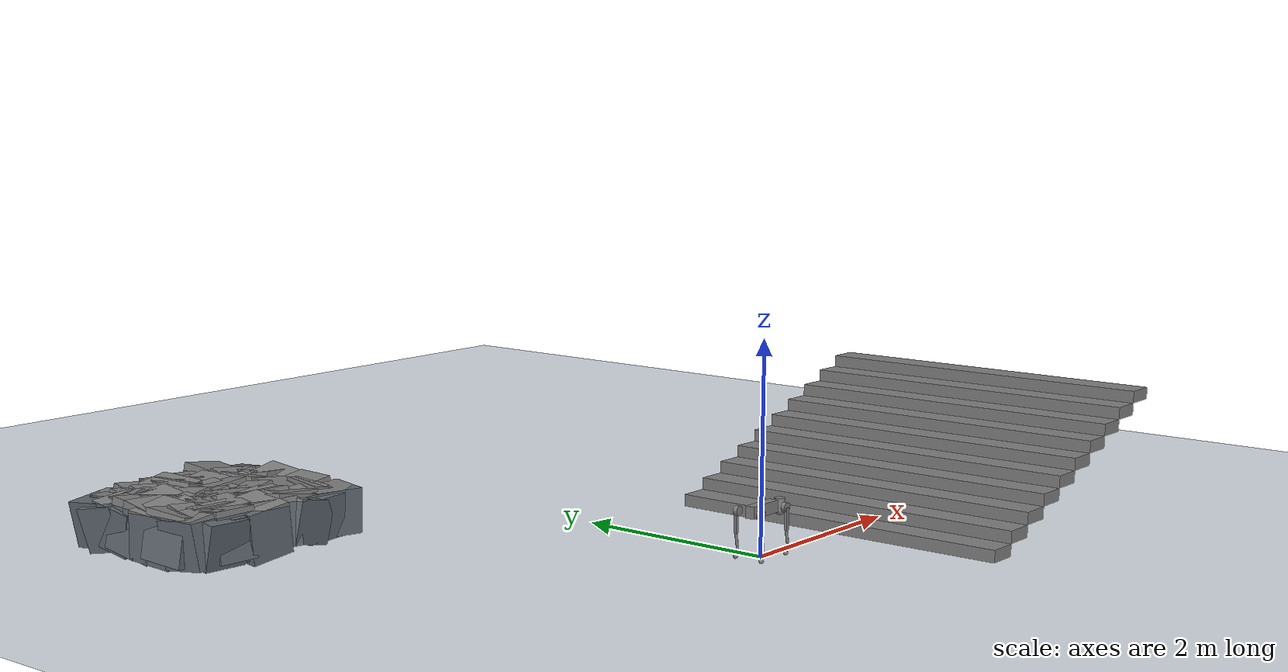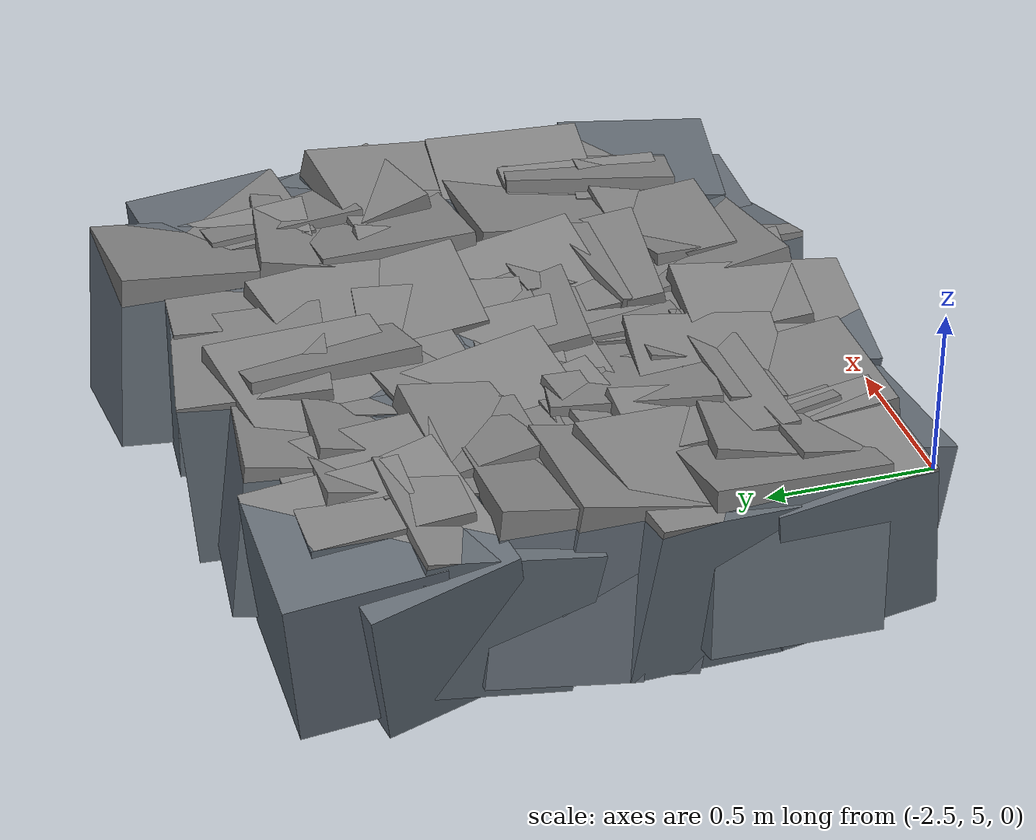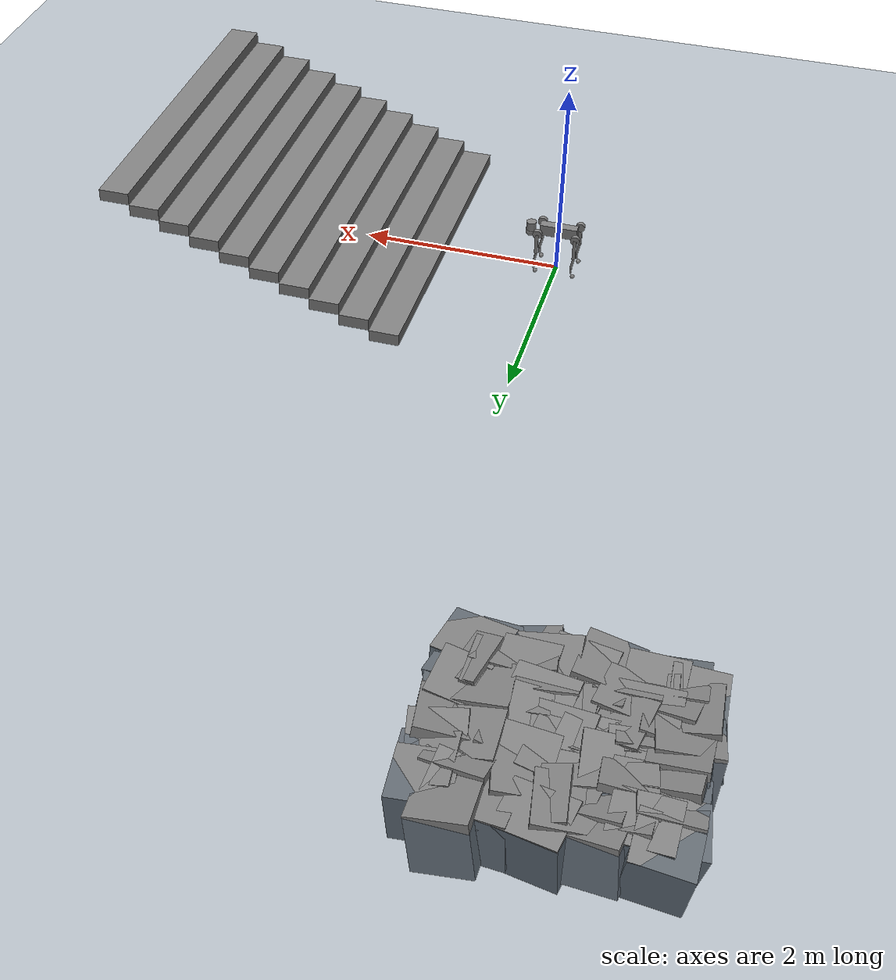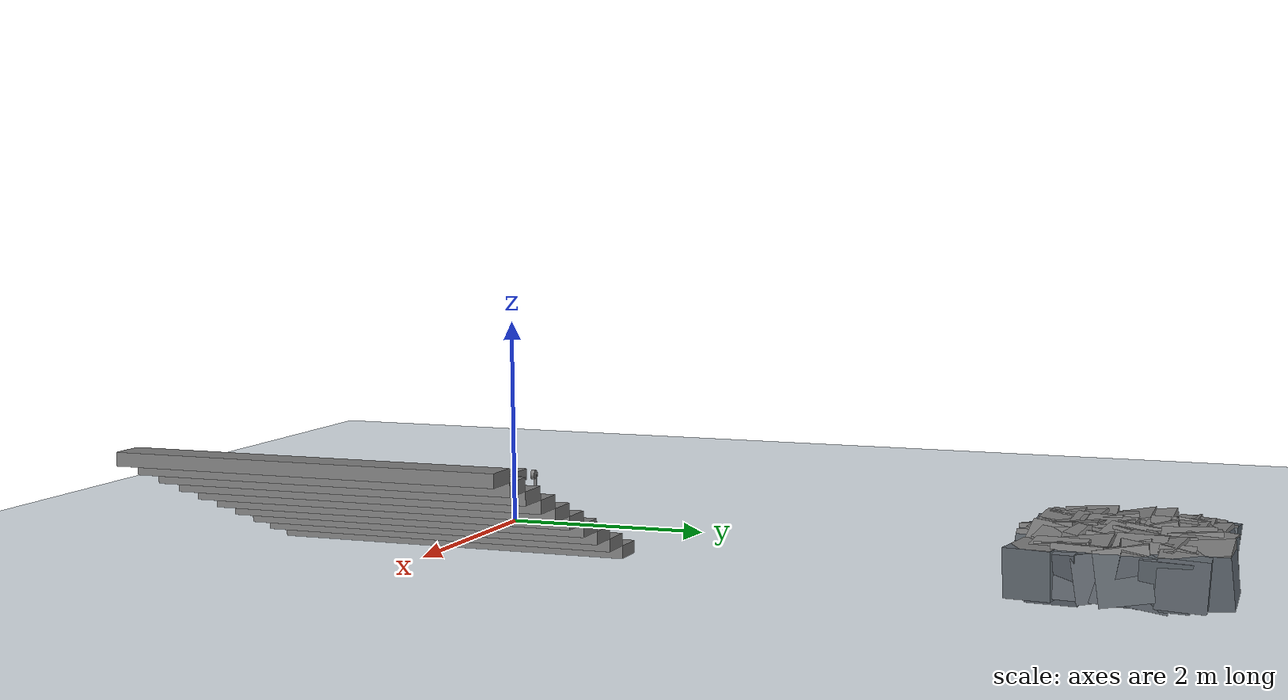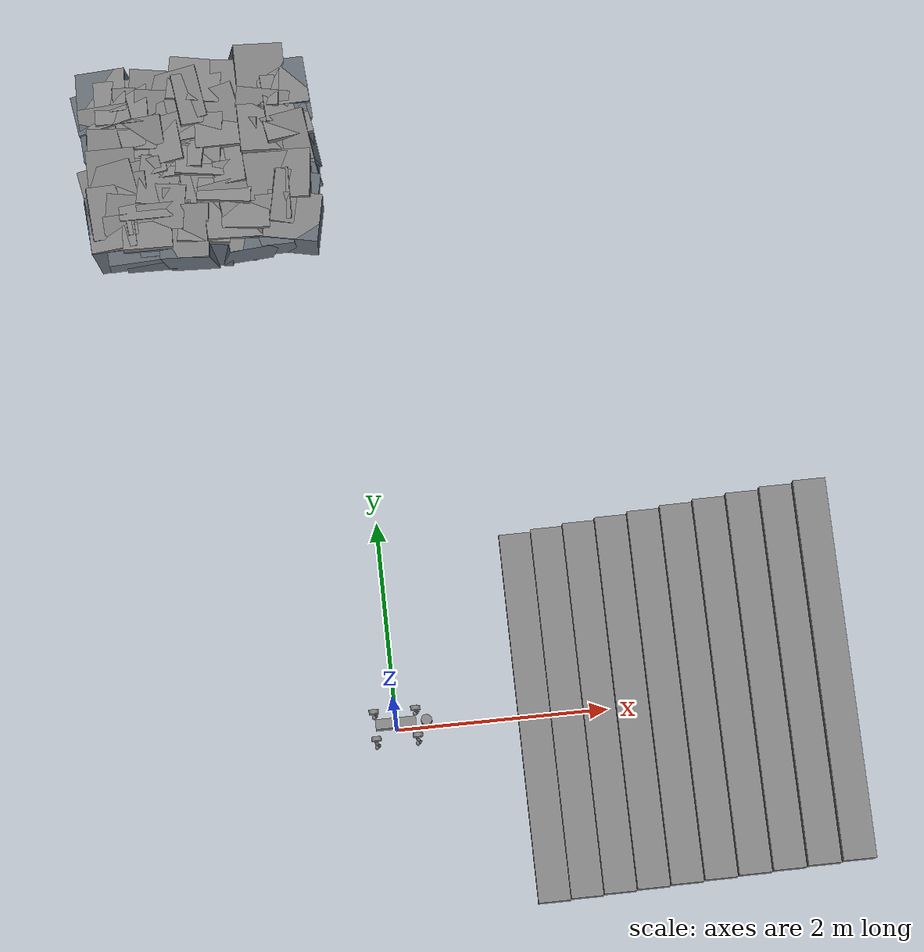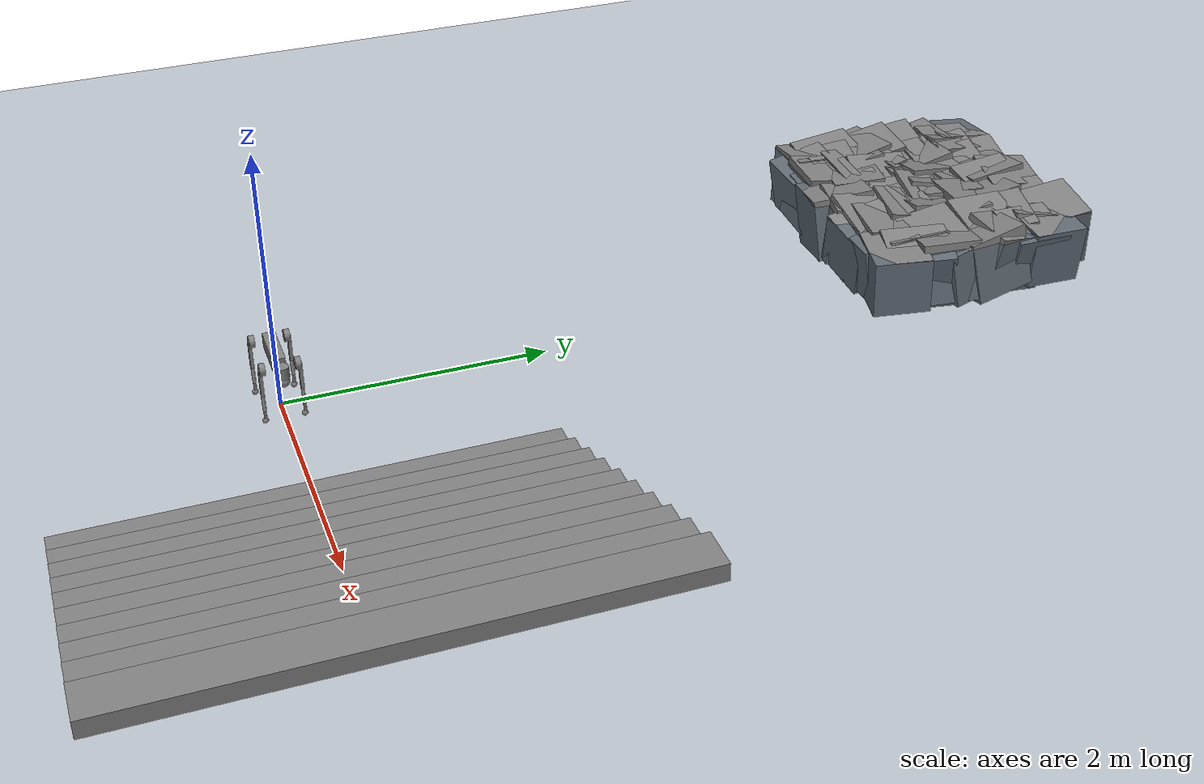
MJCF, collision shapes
<mujoco model="go2_reordered">
  <include file="go2_reordered.xml" />
  <statistic center="1.0 0.7 1.0" extent="0.8" />

  <visual>
    <headlight diffuse="0.6 0.6 0.6" ambient="0.1 0.1 0.1" specular="0.9 0.9 0.9" />
    <rgba haze="0.15 0.25 0.35 1" />
    <global azimuth="-140" elevation="-20" />
  </visual>

  <asset>
    <texture type="skybox" builtin="flat" rgb1="0 0 0" rgb2="0 0 0" width="512" height="3072" />
    <texture type="2d" name="groundplane" builtin="checker" mark="edge" rgb1="0.2 0.3 0.4" rgb2="0.1 0.2 0.3" markrgb="0.8 0.8 0.8" width="300" height="300" />
    <material name="groundplane" texture="groundplane" texuniform="true" texrepeat="5 5" reflectance="0.2" />
  </asset>

  <worldbody>
    <light pos="1 0 3.5" dir="0 0 -1" directional="true" />
    <geom name="floor" size="0 0 0.05" type="plane" material="groundplane" />
  <geom pos="1.3 0.0 0.06" type="box" size="0.15 1.75 0.06" quat="1.0 0.0 0.0 0.0" /><geom pos="1.6 0.0 0.18" type="box" size="0.15 1.75 0.06" quat="1.0 0.0 0.0 0.0" /><geom pos="1.9 0.0 0.3" type="box" size="0.15 1.75 0.06" quat="1.0 0.0 0.0 0.0" /><geom pos="2.2 0.0 0.42" type="box" size="0.15 1.75 0.06" quat="1.0 0.0 0.0 0.0" /><geom pos="2.5 0.0 0.54" type="box" size="0.15 1.75 0.06" quat="1.0 0.0 0.0 0.0" /><geom pos="2.8 0.0 0.66" type="box" size="0.15 1.75 0.06" quat="1.0 0.0 0.0 0.0" /><geom pos="3.1 0.0 0.78" type="box" size="0.15 1.75 0.06" quat="1.0 0.0 0.0 0.0" /><geom pos="3.4 0.0 0.9" type="box" size="0.15 1.75 0.06" quat="1.0 0.0 0.0 0.0" /><geom pos="3.6999999999999997 0.0 1.02" type="box" size="0.15 1.75 0.06" quat="1.0 0.0 0.0 0.0" /><geom pos="3.9999999999999996 0.0 1.1400000000000001" type="box" size="0.15 1.75 0.06" quat="1.0 0.0 0.0 0.0" /><geom pos="-2.275692204596663 5.222427953840395 -0.25" type="box" size="0.22774797884614315 0.2452690002914122 0.2575384432589398" quat="0.9967722461443645 -0.053561457721925894 -0.0494748420774672 0.03359314758146617" /><geom pos="-2.275692204596663 5.419786746753514 -0.25" type="box" size="0.26711890643957836 0.27211757995399566 0.261319166325342" quat="0.9960345402406957 0.03133918932899227 0.07385034711354348 0.03846005838420403" /><geom pos="-2.275692204596663 5.669522915053571 -0.25" type="box" size="0.2664299008210954 0.253722256145906 0.267383662472566" quat="0.9932993886017522 0.06319279356389824 -0.04226749788868013 0.08704282892465338" /><geom pos="-2.275692204596663 5.866189163667039 -0.25" type="box" size="0.2395959581938352 0.2282401480179473 0.27472059301621754" quat="0.9952369957780518 0.09294287953888396 0.028652170206139357 0.00663298727401148" /><geom pos="-2.275692204596663 6.058492269804178 -0.25" type="box" size="0.24101246570413 0.233171754738473 0.2742290039641888" quat="0.995132724692507 0.06671093767737497 0.07100329579469325 -0.014800102248418783" /><geom pos="-2.275692204596663 6.287063344282744 -0.25" type="box" size="0.2525436915632833 0.26513067478487484 0.23772123952810278" quat="0.9949807943602791 0.09190255279499432 -0.03207089948516648 0.02320769377088911" /><geom pos="-2.275692204596663 6.466908963921511 -0.25" type="box" size="0.2739669096741818 0.22730288714654123 0.24393043024576413" quat="0.9889317263169838 -0.08060259690699748 -0.09049624005633025 0.08560194268371099" /><geom pos="-2.275692204596663 6.644462868753335 -0.25" type="box" size="0.2487963665616827 0.2330162261340336 0.24673548495821174" quat="0.9964279969034541 -0.05295670077273315 -0.06576638037393819 0.0012720230925557015" /><geom pos="-2.110826744856104 5.161289700331353 -0.25" type="box" size="0.2719973499580648 0.2470049919236343 0.24491623044252792" quat="0.9952592670103468 0.0896882893813727 0.024574384615469194 0.028479848992603994" /><geom pos="-2.110826744856104 5.353740289452763 -0.25" type="box" size="0.2594712625096126 0.24032072104278732 0.25970782585691965" quat="0.9931187069352377 0.08500367234458783 0.03156177788601598 -0.07411790471869198" /><geom pos="-2.110826744856104 5.555104674217254 -0.25" type="box" size="0.23848936728265824 0.26364328833424305 0.24095115481534796" quat="0.9919460083985672 0.08215556037669246 -0.0947328214459761 0.017868208142569827" /><geom pos="-2.110826744856104 5.729609173532725 -0.25" type="box" size="0.26606190424051845 0.23046689924441524 0.25436842380579494" quat="0.9980738036152217 0.040086318682170066 0.013135123612110925 0.04548887907225106" /><geom pos="-2.110826744856104 5.929636131976497 -0.25" type="box" size="0.22802002846040573 0.2432605562376801 0.22534167608433772" quat="0.9949542136663844 0.06631841376653803 0.06902646498645236 -0.03005541273166915" /><geom pos="-2.110826744856104 6.126881459782755 -0.25" type="box" size="0.22732525815355228 0.23178444825938577 0.24426290811180287" quat="0.9957620535707428 -0.08259202772184 0.03307357015110053 -0.02329438951404992" /><geom pos="-2.110826744856104 6.3520042688063345 -0.25" type="box" size="0.2348389875297819 0.26402898399651603 0.22850872170044695" quat="0.9998864727161741 0.01213431235369811 0.00828972248063315 0.0033287601452603828" /><geom pos="-2.110826744856104 6.515081582637116 -0.25" type="box" size="0.2624843703764773 0.23479359847364997 0.2730090404470215" quat="0.9989923557610562 -0.043567715193581484 -0.010552980169042674 -0.0021821854499977206" /><geom pos="-1.9600850149913995 5.205396429339522 -0.25" type="box" size="0.24336405194015817 0.26088341619770394 0.2677971802643262" quat="0.997925516098054 -0.06368772263217519 0.008102524864010644 -0.004784077464626218" /><geom pos="-1.9600850149913995 5.372216727568588 -0.25" type="box" size="0.2497686231223855 0.2495392011251768 0.2264393406310668" quat="0.9921236820392084 -0.06309956103880307 0.09675025993002627 0.04846062460540716" /><geom pos="-1.9600850149913995 5.546825150562981 -0.25" type="box" size="0.2627235713686762 0.26918964793758443 0.2724889062352489" quat="0.9996564444169861 -0.023229112720484408 0.011493553588605104 0.00391148101288203" /><geom pos="-1.9600850149913995 5.710376659772997 -0.25" type="box" size="0.2285517878770417 0.227360326562507 0.2561910713978269" quat="0.9935601810957934 0.07223891223581518 -0.0325227009884857 0.08100604928209908" /><geom pos="-1.9600850149913995 5.926747791291201 -0.25" type="box" size="0.24303991913480202 0.23079742790448227 0.25051840382267015" quat="0.9941596270677394 -0.06820455324612779 -0.034050004926105285 0.07638960655456821" /><geom pos="-1.9600850149913995 6.145182499859356 -0.25" type="box" size="0.2606752875665946 0.24871930881897816 0.2538775006945229" quat="0.9939096065335186 0.09469590324636877 -0.04677687781949444 0.03143729711983628" /><geom pos="-1.9600850149913995 6.302369765965459 -0.25" type="box" size="0.2622771728690432 0.25688132015169196 0.25083336316528915" quat="0.9917038231938551 -0.03372859739346026 0.07354695873159765 0.099883700581696" /><geom pos="-1.9600850149913995 6.489163665074329 -0.25" type="box" size="0.26621549831638974 0.22908540201748667 0.22951851294137618" quat="0.9941687859775755 0.08546568227339625 0.06548177189538262 -0.006014955598978334" /><geom pos="-1.7830217064158196 5.221731507301991 -0.25" type="box" size="0.2668816883842233 0.26276452927618316 0.24794125803235545" quat="0.9966266985928045 0.08105139225956103 0.012437435216002504 0.003347487123454581" /><geom pos="-1.7830217064158196 5.423128454729424 -0.25" type="box" size="0.23744282980700587 0.22534402919584673 0.27472871339466093" quat="0.9959255596910115 0.02242758737174232 -0.035347370370289295 -0.07987393997252042" /><geom pos="-1.7830217064158196 5.6654412339795375 -0.25" type="box" size="0.2529557420905849 0.25186465597361246 0.27074064144641435" quat="0.9938964773989766 -0.000815521830167803 0.061720342536455794 -0.09143153971815549" /><geom pos="-1.7830217064158196 5.899963895181697 -0.25" type="box" size="0.22554775695085366 0.24154705114719338 0.23223016372592162" quat="0.9945074433238158 -0.09836324845186001 -0.031445019655556544 0.017053658445811876" /><geom pos="-1.7830217064158196 6.076802139299304 -0.25" type="box" size="0.2575326193512669 0.26602956377630904 0.25083720520932373" quat="0.9935318878554464 -0.06650413480365834 -0.07150313390892626 0.057955929028974305" /><geom pos="-1.7830217064158196 6.259345588345288 -0.25" type="box" size="0.2501515247829087 0.2650444857510082 0.2336092151469619" quat="0.9976802894608328 -0.04835564595042546 0.046821596402030555 -0.010173968568424663" /><geom pos="-1.7830217064158196 6.409980407366078 -0.25" type="box" size="0.232696310071144 0.26322294286345804 0.236182040809878" quat="0.9940951164915962 0.08949842727036782 0.04680405200270091 -0.03967759569100642" /><geom pos="-1.7830217064158196 6.617011783765668 -0.25" type="box" size="0.2715442838349046 0.25294490722253793 0.24097465561718" quat="0.9947438440897011 0.06441086761983275 0.04678302637229749 -0.06439932625077739" /><geom pos="-1.5550861124263187 5.152985839270033 -0.25" type="box" size="0.24643428679234872 0.2699989020543683 0.27394453791395956" quat="0.9958536040680017 0.03939361559433154 -0.07172986383044416 -0.03973120876645758" /><geom pos="-1.5550861124263187 5.381622312135561 -0.25" type="box" size="0.2608379112580247 0.24054901237364826 0.2276128210983299" quat="0.993268707518062 0.0942447309273593 0.06093732530058708 -0.028667886965016584" /><geom pos="-1.5550861124263187 5.622390629189484 -0.25" type="box" size="0.25855376163398675 0.27460617326968756 0.22957589414687174" quat="0.9987558670298595 -0.041796531406106736 0.024175969698475398 0.012461561900112886" /><geom pos="-1.5550861124263187 5.823511776171352 -0.25" type="box" size="0.26819469928697326 0.24515089258644274 0.2320727986084611" quat="0.9979361615560974 0.03899613572326096 0.01581049137585232 -0.048505125706357434" /><geom pos="-1.5550861124263187 6.001128351590867 -0.25" type="box" size="0.2644080414990209 0.24490568747449587 0.2332001379758888" quat="0.988764636651012 -0.09849787446057319 -0.08101685331191934 -0.07796750293921156" /><geom pos="-1.5550861124263187 6.166890610083857 -0.25" type="box" size="0.25069330501448706 0.23302031290842454 0.24760357761136562" quat="0.9948690624198905 0.030142708487503802 0.009584099542052369 0.0960994838736059" /><geom pos="-1.5550861124263187 6.330021410031244 -0.25" type="box" size="0.24381064550449705 0.26306730223357533 0.23626539393011073" quat="0.9959383051433218 0.02427096958651699 0.023118547935541623 -0.0835664114637573" /><geom pos="-1.5550861124263187 6.556487000258745 -0.25" type="box" size="0.27408557113688126 0.268892849702812 0.26699781131477507" quat="0.9950247277869869 0.03190861379761286 -0.055329544403204166 0.07646092449140911" /><geom pos="-1.3803799158403474 5.18822875454155 -0.25" type="box" size="0.26087350271251186 0.23596805224722464 0.25730745658187604" quat="0.9939938924129201 -0.08083706672295275 -0.00030251331601820197 -0.07376597437256846" /><geom pos="-1.3803799158403474 5.435519285422012 -0.25" type="box" size="0.25703766676179574 0.24954263262351428 0.2645803753249851" quat="0.9967111559248715 -0.011988142703842415 0.004607449076151717 -0.08001204598327497" /><geom pos="-1.3803799158403474 5.665759490928569 -0.25" type="box" size="0.24387673666573134 0.26685551494551607 0.24340460996335903" quat="0.9972532140216962 -0.02302542597588261 0.07033443007679978 -0.0029874450284672425" /><geom pos="-1.3803799158403474 5.902509224250506 -0.25" type="box" size="0.2519559432483936 0.257676718065912 0.2519956313665196" quat="0.9926835230657146 -0.09527062368454214 0.04439488653171153 -0.059430845075901274" /><geom pos="-1.3803799158403474 6.107029956647715 -0.25" type="box" size="0.2650633797067794 0.25878110505576135 0.24858142680577852" quat="0.9955457803198957 0.0010584171384062178 -0.06262557668157606 -0.07046641885118644" /><geom pos="-1.3803799158403474 6.320776965551507 -0.25" type="box" size="0.2405962211942774 0.25618143448549247 0.2377613622413983" quat="0.9967319786240383 -0.06167419392577129 -0.0297342127598014 0.04286645755565368" /><geom pos="-1.3803799158403474 6.517413683151307 -0.25" type="box" size="0.24390040390766687 0.26813923118075256 0.26512651603243353" quat="0.9928432701827136 0.0022603457761476682 0.09925119244485853 0.06638021157047369" /><geom pos="-1.3803799158403474 6.685955945576909 -0.25" type="box" size="0.26323720874274253 0.2283365722727316 0.2692570511999916" quat="0.9953617191504177 -0.03938940934025594 0.015275474530690485 -0.08643021670464952" /><geom pos="-1.1560124134156409 5.206908232423366 -0.25" type="box" size="0.27037332835528755 0.24388353404642174 0.2629393055807326" quat="0.9925735721462606 -0.07713432413198566 0.09147573834693302 0.021913220014346646" /><geom pos="-1.1560124134156409 5.4137493217734 -0.25" type="box" size="0.24339436917094084 0.24075606802721142 0.25802958280860727" quat="0.992327908083859 0.09282330054518662 -0.0035291414925774783 0.08158861975873698" /><geom pos="-1.1560124134156409 5.594995245820647 -0.25" type="box" size="0.26451815547964214 0.2508130113550679 0.2632125477714114" quat="0.9935037782077121 -0.09008477052674511 0.004697263369467632 -0.06937515782312066" /><geom pos="-1.1560124134156409 5.760904113518375 -0.25" type="box" size="0.2513810425832552 0.23231406167091087 0.2571220138100021" quat="0.9923981089059777 -0.07553686827351788 -0.09120835530802565 0.03348448735270208" /><geom pos="-1.1560124134156409 6.001040407344634 -0.25" type="box" size="0.2687189226203871 0.25137103005251327 0.2279450476279911" quat="0.995249628279045 -0.08602311475727673 0.025512806637629296 -0.03777959548949866" /><geom pos="-1.1560124134156409 6.166350101170174 -0.25" type="box" size="0.23007073352335697 0.22818762808299517 0.2731650252118674" quat="0.9973629127197441 -0.060535736945359714 -0.038033540703776035 -0.012493785063161622" /><geom pos="-1.1560124134156409 6.372449561466029 -0.25" type="box" size="0.22718972090023667 0.23805270912435256 0.26894199900476895" quat="0.9928279014403513 0.018834035479872405 -0.06520148318995077 0.0984215617581903" /><geom pos="-1.1560124134156409 6.593543000300045 -0.25" type="box" size="0.2730931302454492 0.26762136107080964 0.23974532305308974" quat="0.9992509724312952 -0.016889619391064523 0.0346909228171681 0.0029622164048888804" /><geom pos="-0.990933272940169 5.169133636530868 -0.25" type="box" size="0.2552901986461645 0.256770355393662 0.2379446007209252" quat="0.9923551555752896 0.030607846324676898 0.10110577982894126 0.06381243007196377" /><geom pos="-0.990933272940169 5.338724397326705 -0.25" type="box" size="0.23522953956957407 0.26828296322449857 0.2585629979856814" quat="0.9972098547342064 -0.06026028011318548 0.03490084955158673 -0.026891168852258958" /><geom pos="-0.990933272940169 5.586689547585169 -0.25" type="box" size="0.2628029909154249 0.26425287564265987 0.24917729871460298" quat="0.9983813171664583 0.03199217640881355 0.01728245017124392 0.04373286061617532" /><geom pos="-0.990933272940169 5.807645988129185 -0.25" type="box" size="0.2640216857120475 0.225924445918465 0.23086489479545869" quat="0.9966570565396401 -0.009767362183760847 0.02078981697589138 -0.07840340423617417" /><geom pos="-0.990933272940169 6.037399443761256 -0.25" type="box" size="0.23767236825846683 0.26046761714467465 0.2259939835761223" quat="0.9903439884301588 0.09114957360735403 -0.0967151045231269 -0.03945539720397536" /><geom pos="-0.990933272940169 6.20781468943637 -0.25" type="box" size="0.255405971659172 0.24717512190762692 0.24795024871562668" quat="0.9989495555155575 -0.002100921570899062 0.027633312028742398 -0.03649344777004876" /><geom pos="-0.990933272940169 6.383299204512326 -0.25" type="box" size="0.2383603439061317 0.2544885455403114 0.23790689800707177" quat="0.9990540186269066 -0.008217551170634961 -0.03263352424753647 0.027542563667378502" /><geom pos="-0.990933272940169 6.616945480569374 -0.25" type="box" size="0.24146151524276657 0.2628923436515301 0.24641415941348843" quat="0.9985718689124152 0.00775376724953157 0.023499100227113927 -0.047348643050486854" /><geom pos="-0.7519063739809393 5.204840127945546 -0.25" type="box" size="0.23737758055696453 0.2562687283315093 0.23952039228728939" quat="0.997831483760375 0.06098213383998707 -0.024583684094082046 -0.0030252016879675062" /><geom pos="-0.7519063739809393 5.436225659027553 -0.25" type="box" size="0.27314410615189605 0.26245026315943215 0.22924714613425995" quat="0.9948212606635898 0.019200186168298113 -0.09923073469512438 -0.010736548545718913" /><geom pos="-0.7519063739809393 5.6463590493715 -0.25" type="box" size="0.23403710211255457 0.24200613270541763 0.2662469057056471" quat="0.9973214039375327 0.047498196489729944 0.0555179189118737 0.0034204178087636123" /><geom pos="-0.7519063739809393 5.887930873832792 -0.25" type="box" size="0.25239855409785616 0.24054197198762006 0.22814565775857532" quat="0.9933576306214026 0.0931173001690559 -0.007498704500579644 0.06718300027739055" /><geom pos="-0.7519063739809393 6.130153349850071 -0.25" type="box" size="0.2695279667419576 0.2463198411055645 0.2746669041344131" quat="0.9959207907246518 -0.011243299612308591 0.08911856925731051 0.00855847122692545" /><geom pos="-0.7519063739809393 6.343512632024484 -0.25" type="box" size="0.2628928930193244 0.22866284652184332 0.270030744086006" quat="0.992877360116595 0.07390970253041741 0.04166861358164854 -0.08363988451659837" /><geom pos="-0.7519063739809393 6.569250465654696 -0.25" type="box" size="0.2554310013566199 0.2538465082209075 0.2326897825514388" quat="0.9919046561878797 -0.08944592857867821 -0.07703848633061475 -0.04679370168505667" /><geom pos="-0.7519063739809393 6.758454610407893 -0.25" type="box" size="0.24527560138623758 0.2726144362599016 0.2733398828480182" quat="0.9959287892142864 0.0459161276439915 0.077361078701703 0.005728833952497216" /><geom pos="-0.5230709068282964 5.198523296022357 -0.25" type="box" size="0.2707134770556119 0.24123794636118043 0.24523432172208115" quat="0.9950492254998009 0.0119228516505982 0.007996506986259696 -0.09834093916972268" /><geom pos="-0.5230709068282964 5.39369768652347 -0.25" type="box" size="0.22553610227295529 0.2716335086241169 0.2568591576129177" quat="0.9905748978745255 0.02161818509675313 0.0939723240030224 -0.09727912466437452" /><geom pos="-0.5230709068282964 5.624373304615206 -0.25" type="box" size="0.2563830828329629 0.2516022935589092 0.26449132657261337" quat="0.9957487837519566 -0.011384835890983528 -0.07863926942650246 -0.04658981082061292" /><geom pos="-0.5230709068282964 5.816478889194408 -0.25" type="box" size="0.2696087056235802 0.27483415291715624 0.23662279159878408" quat="0.9918528965179182 0.07972142492112518 -0.03324654232419974 0.09363222469345915" /><geom pos="-0.5230709068282964 6.0282442450144575 -0.25" type="box" size="0.26949101369977235 0.2630359807095265 0.27170225364553413" quat="0.9924678806177624 0.07830361663096493 -0.06801943935123117 0.06518746378669857" /><geom pos="-0.5230709068282964 6.211735969309096 -0.25" type="box" size="0.23389904021942612 0.27149706313076843 0.25747504553903744" quat="0.9905770671635962 -0.09831068451544346 0.0362925900633395 0.08817557046125381" /><geom pos="-0.5230709068282964 6.421538807881047 -0.25" type="box" size="0.23315177575272408 0.2480648995085232 0.2508684715368205" quat="0.9944393931672323 -0.028988729783041338 0.09651922344335148 0.03056119056327794" /><geom pos="-0.5230709068282964 6.583516253773541 -0.25" type="box" size="0.24642845470638472 0.24497731388209215 0.25095049402638536" quat="0.9984752475516173 -0.031197988239659736 0.034927558120792374 0.02922210191367892" /></worldbody>
</mujoco>

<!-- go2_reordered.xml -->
<mujoco model="go2">
  <compiler angle="radian" meshdir="assets" autolimits="true" />

  <option cone="elliptic" impratio="100" />

  <default>
    <default class="go2">
      <geom friction="0.4" margin="0.001" condim="1"/>
      <joint axis="0 1 0" damping="0.1" armature="0.01" frictionloss="0.2"/>
      <motor ctrlrange="-23.7 23.7"/>
      <default class="abduction">
        <joint axis="1 0 0" range="-1.0472 1.0472"/>
      </default>
      <default class="hip">
        <default class="front_hip">
          <joint range="-1.5708 3.4907"/>
        </default>
        <default class="back_hip">
          <joint range="-0.5236 4.5379"/>
        </default>
      </default>
      <default class="knee">
        <joint range="-2.7227 -0.83776"/>
        <motor ctrlrange="-45.43 45.43"/>
      </default>
      <default class="visual">
        <geom type="mesh" contype="0" conaffinity="0" group="2"/>
      </default>
      <default class="collision">
        <geom group="3"/>
        <default class="foot">
          <geom size="0.022" pos="-0.002 0 -0.213" priority="1" condim="6"
            friction="0.7 0.02 0.01"/>
        </default>
      </default>
    </default>
  </default>

  <asset>
    <material name="metal" rgba=".9 .95 .95 1" />
    <material name="black" rgba="0 0 0 1" />
    <material name="white" rgba="1 1 1 1" />
    <material name="gray" rgba="0.671705 0.692426 0.774270 1" />

    <mesh file="base_0.obj" />
    <mesh file="base_1.obj" />
    <mesh file="base_2.obj" />
    <mesh file="base_3.obj" />
    <mesh file="base_4.obj" />
    <mesh file="hip_0.obj" />
    <mesh file="hip_1.obj" />
    <mesh file="thigh_0.obj" />
    <mesh file="thigh_1.obj" />
    <mesh file="thigh_mirror_0.obj" />
    <mesh file="thigh_mirror_1.obj" />
    <mesh file="calf_0.obj" />
    <mesh file="calf_1.obj" />
    <mesh file="calf_mirror_0.obj" />
    <mesh file="calf_mirror_1.obj" />
    <mesh file="foot.obj" />
  </asset>

  <worldbody>
    <body name="base_link" pos="0 0 0.445" childclass="go2">
      <inertial pos="0.021112 0 -0.005366" quat="-0.000543471 0.713435 -0.00173769 0.700719"
        mass="6.921"
        diaginertia="0.107027 0.0980771 0.0244531" />
      <freejoint />
      <geom mesh="base_0" material="black" class="visual" />
      <geom mesh="base_1" material="black" class="visual" />
      <geom mesh="base_2" material="black" class="visual" />
      <geom mesh="base_3" material="white" class="visual" />
      <geom mesh="base_4" material="gray" class="visual" />
      <geom size="0.1881 0.04675 0.057" type="box" class="collision" />
      <geom size="0.05 0.045" pos="0.285 0 0.01" type="cylinder" class="collision" />
      <geom size="0.047" pos="0.293 0 -0.06" class="collision" />
      <site name="imu" pos="-0.02557 0 0.04232" />
      <body name="FL_hip" pos="0.1934 0.0465 0">
        <inertial pos="-0.0054 0.00194 -0.000105" quat="0.497014 0.499245 0.505462 0.498237"
          mass="0.678"
          diaginertia="0.00088403 0.000596003 0.000479967" />
        <joint name="FL_hip_joint" class="abduction" />
        <geom mesh="hip_0" material="metal" class="visual" />
        <geom mesh="hip_1" material="gray" class="visual" />
        <geom size="0.046 0.02" pos="0 0.08 0" quat="1 1 0 0" type="cylinder" class="collision" />
        <body name="FL_thigh" pos="0 0.0955 0">
          <inertial pos="-0.00374 -0.0223 -0.0327" quat="0.829533 0.0847635 -0.0200632 0.551623"
            mass="1.152"
            diaginertia="0.00594973 0.00584149 0.000878787" />
          <joint name="FL_thigh_joint" class="front_hip" />
          <geom mesh="thigh_0" material="metal" class="visual" />
          <geom mesh="thigh_1" material="gray" class="visual" />
          <geom size="0.1065 0.01225 0.017" pos="0 0 -0.1065" quat="0.707107 0 0.707107 0"
            type="box" class="collision" />
          <body name="FL_calf" pos="0 0 -0.213">
            <inertial pos="0.00629595 -0.000622121 -0.141417"
              quat="0.710672 0.00154099 -0.00450087 0.703508"
              mass="0.241352" diaginertia="0.0014901 0.00146356 5.31397e-05" />
            <joint name="FL_calf_joint" class="knee" />
            <geom mesh="calf_0" material="gray" class="visual" />
            <geom mesh="calf_1" material="black" class="visual" />
            <geom size="0.012 0.06" pos="0.008 0 -0.06" quat="0.994493 0 -0.104807 0"
              type="cylinder" class="collision" />
            <geom size="0.011 0.0325" pos="0.02 0 -0.148" quat="0.999688 0 0.0249974 0"
              type="cylinder" class="collision" />
            <geom pos="0 0 -0.213" mesh="foot" class="visual" material="black" />
            <geom name="FL" class="foot" />
            <body name="FL_foot" pos="0 0 -0.213" />
          </body>
        </body>
      </body>
      <body name="FR_hip" pos="0.1934 -0.0465 0">
        <inertial pos="-0.0054 -0.00194 -0.000105" quat="0.498237 0.505462 0.499245 0.497014"
          mass="0.678"
          diaginertia="0.00088403 0.000596003 0.000479967" />
        <joint name="FR_hip_joint" class="abduction" />
        <geom mesh="hip_0" material="metal" class="visual" quat="4.63268e-05 1 0 0" />
        <geom mesh="hip_1" material="gray" class="visual" quat="4.63268e-05 1 0 0" />
        <geom size="0.046 0.02" pos="0 -0.08 0" quat="0.707107 0.707107 0 0" type="cylinder"
          class="collision" />
        <body name="FR_thigh" pos="0 -0.0955 0">
          <inertial pos="-0.00374 0.0223 -0.0327" quat="0.551623 -0.0200632 0.0847635 0.829533"
            mass="1.152"
            diaginertia="0.00594973 0.00584149 0.000878787" />
          <joint name="FR_thigh_joint" class="front_hip" />
          <geom mesh="thigh_mirror_0" material="metal" class="visual" />
          <geom mesh="thigh_mirror_1" material="gray" class="visual" />
          <geom size="0.1065 0.01225 0.017" pos="0 0 -0.1065" quat="0.707107 0 0.707107 0"
            type="box" class="collision" />
          <body name="FR_calf" pos="0 0 -0.213">
            <inertial pos="0.00629595 0.000622121 -0.141417"
              quat="0.703508 -0.00450087 0.00154099 0.710672"
              mass="0.241352" diaginertia="0.0014901 0.00146356 5.31397e-05" />
            <joint name="FR_calf_joint" class="knee" />
            <geom mesh="calf_mirror_0" material="gray" class="visual" />
            <geom mesh="calf_mirror_1" material="black" class="visual" />
            <geom size="0.013 0.06" pos="0.01 0 -0.06" quat="0.995004 0 -0.0998334 0"
              type="cylinder" class="collision" />
            <geom size="0.011 0.0325" pos="0.02 0 -0.148" quat="0.999688 0 0.0249974 0"
              type="cylinder" class="collision" />
            <geom pos="0 0 -0.213" mesh="foot" class="visual" material="black" />
            <geom name="FR" class="foot" />
            <body name="FR_foot" pos="0 0 -0.213" />
          </body>
        </body>
      </body>
      <body name="RL_hip" pos="-0.1934 0.0465 0">
        <inertial pos="0.0054 0.00194 -0.000105" quat="0.505462 0.498237 0.497014 0.499245"
          mass="0.678"
          diaginertia="0.00088403 0.000596003 0.000479967" />
        <joint name="RL_hip_joint" class="abduction" />
        <geom mesh="hip_0" material="metal" class="visual" quat="4.63268e-05 0 1 0" />
        <geom mesh="hip_1" material="gray" class="visual" quat="4.63268e-05 0 1 0" />
        <geom size="0.046 0.02" pos="0 0.08 0" quat="0.707107 0.707107 0 0" type="cylinder"
          class="collision" />
        <body name="RL_thigh" pos="0 0.0955 0">
          <inertial pos="-0.00374 -0.0223 -0.0327" quat="0.829533 0.0847635 -0.0200632 0.551623"
            mass="1.152"
            diaginertia="0.00594973 0.00584149 0.000878787" />
          <joint name="RL_thigh_joint" class="back_hip" />
          <geom mesh="thigh_0" material="metal" class="visual" />
          <geom mesh="thigh_1" material="gray" class="visual" />
          <geom size="0.1065 0.01225 0.017" pos="0 0 -0.1065" quat="0.707107 0 0.707107 0"
            type="box" class="collision" />
          <body name="RL_calf" pos="0 0 -0.213">
            <inertial pos="0.00629595 -0.000622121 -0.141417"
              quat="0.710672 0.00154099 -0.00450087 0.703508"
              mass="0.241352" diaginertia="0.0014901 0.00146356 5.31397e-05" />
            <joint name="RL_calf_joint" class="knee" />
            <geom mesh="calf_0" material="gray" class="visual" />
            <geom mesh="calf_1" material="black" class="visual" />
            <geom size="0.013 0.06" pos="0.01 0 -0.06" quat="0.995004 0 -0.0998334 0"
              type="cylinder" class="collision" />
            <geom size="0.011 0.0325" pos="0.02 0 -0.148" quat="0.999688 0 0.0249974 0"
              type="cylinder" class="collision" />
            <geom pos="0 0 -0.213" mesh="foot" class="visual" material="black" />
            <geom name="RL" class="foot" />
            <body name="RL_foot" pos="0 0 -0.213" />
          </body>
        </body>
      </body>
      <body name="RR_hip" pos="-0.1934 -0.0465 0">
        <inertial pos="0.0054 -0.00194 -0.000105" quat="0.499245 0.497014 0.498237 0.505462"
          mass="0.678"
          diaginertia="0.00088403 0.000596003 0.000479967" />
        <joint name="RR_hip_joint" class="abduction" />
        <geom mesh="hip_0" material="metal" class="visual"
          quat="2.14617e-09 4.63268e-05 4.63268e-05 -1" />
        <geom mesh="hip_1" material="gray" class="visual"
          quat="2.14617e-09 4.63268e-05 4.63268e-05 -1" />
        <geom size="0.046 0.02" pos="0 -0.08 0" quat="0.707107 0.707107 0 0" type="cylinder"
          class="collision" />
        <body name="RR_thigh" pos="0 -0.0955 0">
          <inertial pos="-0.00374 0.0223 -0.0327" quat="0.551623 -0.0200632 0.0847635 0.829533"
            mass="1.152"
            diaginertia="0.00594973 0.00584149 0.000878787" />
          <joint name="RR_thigh_joint" class="back_hip" />
          <geom mesh="thigh_mirror_0" material="metal" class="visual" />
          <geom mesh="thigh_mirror_1" material="gray" class="visual" />
          <geom size="0.1065 0.01225 0.017" pos="0 0 -0.1065" quat="0.707107 0 0.707107 0"
            type="box" class="collision" />
          <body name="RR_calf" pos="0 0 -0.213">
            <inertial pos="0.00629595 0.000622121 -0.141417"
              quat="0.703508 -0.00450087 0.00154099 0.710672"
              mass="0.241352" diaginertia="0.0014901 0.00146356 5.31397e-05" />
            <joint name="RR_calf_joint" class="knee" />
            <geom mesh="calf_mirror_0" material="gray" class="visual" />
            <geom mesh="calf_mirror_1" material="black" class="visual" />
            <geom size="0.013 0.06" pos="0.01 0 -0.06" quat="0.995004 0 -0.0998334 0"
              type="cylinder" class="collision" />
            <geom size="0.011 0.0325" pos="0.02 0 -0.148" quat="0.999688 0 0.0249974 0"
              type="cylinder" class="collision" />
            <geom pos="0 0 -0.213" mesh="foot" class="visual" material="black" />
            <geom name="RR" class="foot" />
            <body name="RR_foot" pos="0 0 -0.213" />
          </body>
        </body>
      </body>
    </body>
  </worldbody>

  <actuator>
    <motor class="abduction" name="FL_hip" joint="FL_hip_joint" />
    <motor class="front_hip" name="FL_thigh" joint="FL_thigh_joint" />
    <motor class="knee" name="FL_calf" joint="FL_calf_joint" />
    <motor class="abduction" name="FR_hip" joint="FR_hip_joint" />
    <motor class="front_hip" name="FR_thigh" joint="FR_thigh_joint" />
    <motor class="knee" name="FR_calf" joint="FR_calf_joint" />
    <motor class="abduction" name="RL_hip" joint="RL_hip_joint" />
    <motor class="back_hip" name="RL_thigh" joint="RL_thigh_joint" />
    <motor class="knee" name="RL_calf" joint="RL_calf_joint" />
    <motor class="abduction" name="RR_hip" joint="RR_hip_joint" />
    <motor class="back_hip" name="RR_thigh" joint="RR_thigh_joint" />
    <motor class="knee" name="RR_calf" joint="RR_calf_joint" />

  </actuator>

  <sensor>
    <jointpos name="FL_hip_pos" joint="FL_hip_joint" />
    <jointpos name="FL_thigh_pos" joint="FL_thigh_joint" />
    <jointpos name="FL_calf_pos" joint="FL_calf_joint" />
    <jointpos name="FR_hip_pos" joint="FR_hip_joint" />
    <jointpos name="FR_thigh_pos" joint="FR_thigh_joint" />
    <jointpos name="FR_calf_pos" joint="FR_calf_joint" />
    <jointpos name="RL_hip_pos" joint="RL_hip_joint" />
    <jointpos name="RL_thigh_pos" joint="RL_thigh_joint" />
    <jointpos name="RL_calf_pos" joint="RL_calf_joint" />
    <jointpos name="RR_hip_pos" joint="RR_hip_joint" />
    <jointpos name="RR_thigh_pos" joint="RR_thigh_joint" />
    <jointpos name="RR_calf_pos" joint="RR_calf_joint" />

    <jointvel name="FL_hip_vel" joint="FL_hip_joint" />
    <jointvel name="FL_thigh_vel" joint="FL_thigh_joint" />
    <jointvel name="FL_calf_vel" joint="FL_calf_joint" />
    <jointvel name="FR_hip_vel" joint="FR_hip_joint" />
    <jointvel name="FR_thigh_vel" joint="FR_thigh_joint" />
    <jointvel name="FR_calf_vel" joint="FR_calf_joint" />
    <jointvel name="RL_hip_vel" joint="RL_hip_joint" />
    <jointvel name="RL_thigh_vel" joint="RL_thigh_joint" />
    <jointvel name="RL_calf_vel" joint="RL_calf_joint" />
    <jointvel name="RR_hip_vel" joint="RR_hip_joint" />
    <jointvel name="RR_thigh_vel" joint="RR_thigh_joint" />
    <jointvel name="RR_calf_vel" joint="RR_calf_joint" />

    <jointactuatorfrc name="FL_hip_torque" joint="FL_hip_joint" noise="0.00" />
    <jointactuatorfrc name="FL_thigh_torque" joint="FL_thigh_joint" noise="0.00" />
    <jointactuatorfrc name="FL_calf_torque" joint="FL_calf_joint" noise="0.00" />
    <jointactuatorfrc name="FR_hip_torque" joint="FR_hip_joint" noise="0.00" />
    <jointactuatorfrc name="FR_thigh_torque" joint="FR_thigh_joint" noise="0.00" />
    <jointactuatorfrc name="FR_calf_torque" joint="FR_calf_joint" noise="0.00" />
    <jointactuatorfrc name="RL_hip_torque" joint="RL_hip_joint" noise="0.00" />
    <jointactuatorfrc name="RL_thigh_torque" joint="RL_thigh_joint" noise="0.00" />
    <jointactuatorfrc name="RL_calf_torque" joint="RL_calf_joint" noise="0.00" />
    <jointactuatorfrc name="RR_hip_torque" joint="RR_hip_joint" noise="0.00" />
    <jointactuatorfrc name="RR_thigh_torque" joint="RR_thigh_joint" noise="0.00" />
    <jointactuatorfrc name="RR_calf_torque" joint="RR_calf_joint" noise="0.00" />

    <framequat name="imu_quat" objtype="site" objname="imu" />
    <gyro name="imu_gyro" site="imu" />
    <accelerometer name="imu_acc" site="imu" />

    <framepos name="frame_pos" objtype="site" objname="imu" />
    <framelinvel name="frame_vel" objtype="site" objname="imu" />
  </sensor>

  <keyframe>
    <key name="home" qpos="0 0 0.27 1 0 0 0 0 0.9 -1.8 0 0.9 -1.8 0 0.9 -1.8 0 0.9 -1.8"
      ctrl="0 0.9 -1.8 0 0.9 -1.8 0 0.9 -1.8 0 0.9 -1.8" />
  </keyframe>
</mujoco>
